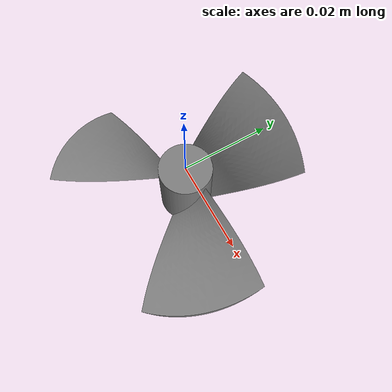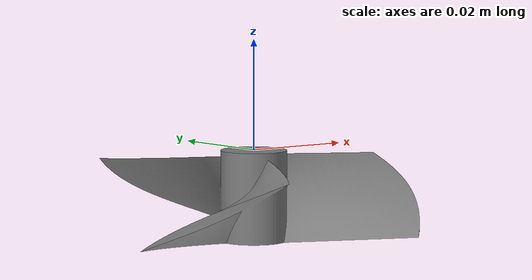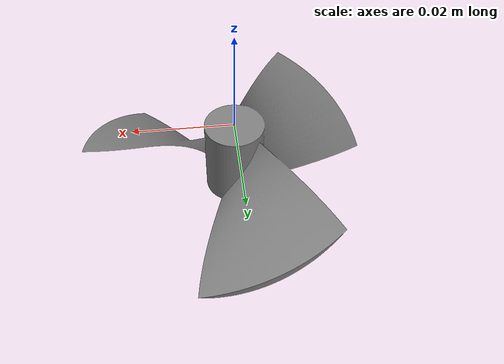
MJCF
<?xml version="1.0" encoding="UTF-8"?>
<mujoco>
<compiler meshdir="assets"/>
  <asset>
    <mesh file="robot____jiang_ye_ce_zuo_shang_zheng__1.stl"/>
  </asset>

  <default>
  <default class="cetuizuoshang_default">
  <geom contype="0" conaffinity="0"/>
  </default>
  </default>

  <worldbody>
  <body name="cetuizuoshang_body" pos="0 0 0">
    <geom type="mesh" mesh="robot____jiang_ye_ce_zuo_shang_zheng__1" mass="0.0001" class="cetuizuoshang_default"/>
  </body>
  </worldbody>
</mujoco>
